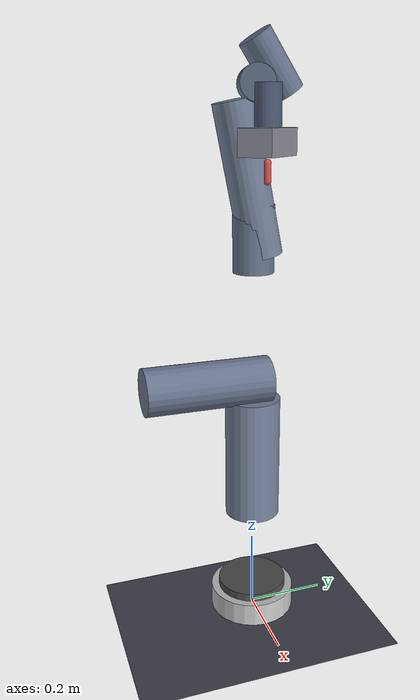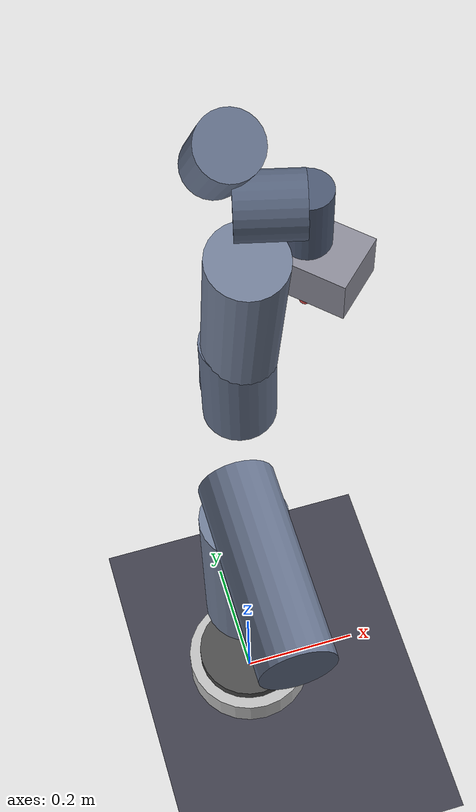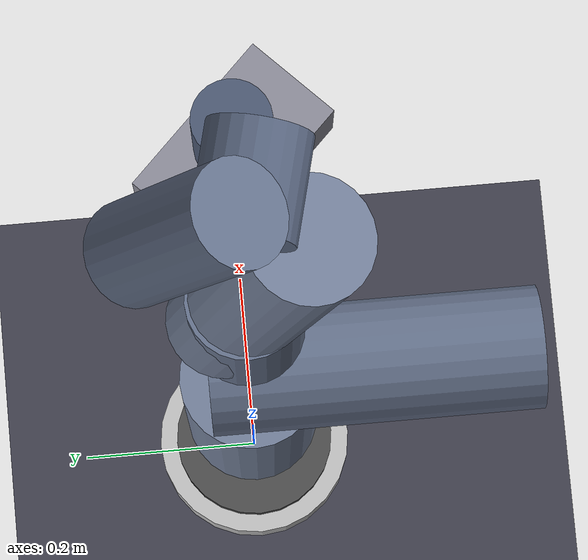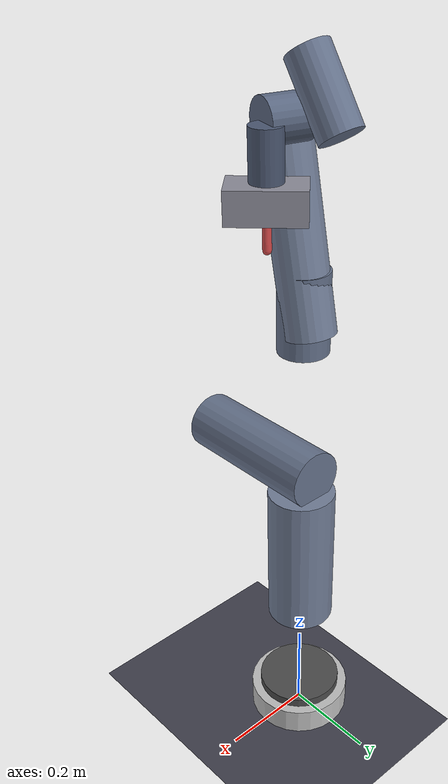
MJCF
<mujoco model="panda">
  <compiler angle="radian" autolimits="true"/>
  <option integrator="implicitfast" timestep="0.005"/>

  <worldbody>
    <light pos="1 1 2" mode="trackcom"/>
    <geom type="plane" size="1.5 1.5 0.05" rgba="0.25 0.25 0.3 1"/>

    <body name="link0" pos="0 0 0">
      <inertial mass="0.629769" pos="-0.041018 -0.00014 0.049974"
        fullinertia="0.00315 0.00388 0.004285 8.2904e-7 0.00015 8.2299e-6"/>
      <geom type="cylinder" size="0.11 0.06" fromto="0 0 0 0 0 0.06" rgba="0.75 0.75 0.75 1"/>
      <geom type="cylinder" size="0.09 0.02" fromto="0 0 0.06 0 0 0.08" rgba="0.3 0.3 0.3 1"/>

      <body name="link1" pos="0 0 0.333">
        <inertial mass="4.970684" pos="0.003875 0.002081 -0.04762"
          fullinertia="0.70337 0.70661 0.0091170 -0.00013900 0.0067720 0.019169"/>
        <joint name="joint1" type="hinge" axis="0 0 1" range="-2.8973 2.8973" armature="0.1" damping="1"/>
        <geom type="cylinder" size="0.07 0.18" fromto="0 0 -0.05 0 0 0.27" rgba="0.45 0.5 0.6 1"/>

        <body name="link2" pos="0 0 0.316" quat="0.7071 -0.7071 0 0">
          <inertial mass="0.646926" pos="-0.003141 -0.02872 0.003495"
            fullinertia="0.0079620 2.8110e-2 2.5995e-2 -3.925e-3 1.0254e-2 7.04e-4"/>
          <joint name="joint2" axis="0 0 1" range="-1.7628 1.7628" armature="0.1" damping="1"/>
          <geom type="cylinder" size="0.06 0.18" fromto="0 0 -0.28 0 0 0.04" rgba="0.4 0.45 0.55 1"/>

          <body name="link3" pos="0 -0.316 0" quat="0.7071 0.7071 0 0">
            <inertial mass="3.228604" pos="2.7518e-2 3.9252e-2 -6.6502e-2"
              fullinertia="3.7242e-2 3.6155e-2 1.083e-2 -4.761e-3 -1.1396e-2 -1.2805e-2"/>
            <joint name="joint3" axis="0 0 1" range="-2.8973 2.8973" armature="0.1" damping="1"/>
            <geom type="cylinder" size="0.05 0.16" fromto="0 0 -0.04 0 0 0.12" rgba="0.4 0.45 0.55 1"/>

            <body name="link4" pos="0.0825 0 0" quat="0.7071 0.7071 0 0">
              <inertial mass="3.587895" pos="-5.317e-2 1.04419e-1 2.7454e-2"
                fullinertia="2.5853e-2 1.9552e-2 2.8323e-2 7.796e-3 -1.332e-3 8.641e-3"/>
              <joint name="joint4" axis="0 0 1" range="-3.0718 -0.0698" armature="0.1" damping="1"/>
              <geom type="cylinder" size="0.05 0.14" fromto="-0.08 0 -0.02 -0.08 0.35 0.05" rgba="0.45 0.5 0.6 1"/>

              <body name="link5" pos="-0.0825 0.384 0" quat="0.7071 -0.7071 0 0">
                <inertial mass="1.225946" pos="-1.1953e-2 4.1065e-2 -3.8437e-2"
                  fullinertia="3.5549e-2 2.9474e-2 8.627e-3 -2.117e-3 -4.037e-3 2.29e-4"/>
                <joint name="joint5" axis="0 0 1" range="-2.8973 2.8973" armature="0.1" damping="1"/>
                <geom type="cylinder" size="0.04 0.12" fromto="0 0.08 -0.02 0 0 0.10" rgba="0.4 0.45 0.55 1"/>

                <body name="link6" pos="0 0 0" quat="0.7071 0.7071 0 0">
                  <inertial mass="1.666555" pos="6.0149e-2 -1.4117e-2 -1.0517e-2"
                    fullinertia="1.964e-3 4.354e-3 5.433e-3 1.09e-4 -1.158e-3 3.41e-4"/>
                  <joint name="joint6" axis="0 0 1" range="-0.0175 3.7525" armature="0.1" damping="1"/>
                  <geom type="cylinder" size="0.04 0.09" fromto="0 0 0 0.08 0 0.02" rgba="0.35 0.4 0.5 1"/>

                  <body name="link7" pos="0.088 0 0" quat="0.7071 0.7071 0 0">
                    <inertial mass="0.735522" pos="1.0517e-2 -4.252e-3 6.1597e-2"
                      fullinertia="1.2516e-2 1.0027e-2 4.815e-3 -4.28e-4 -1.196e-3 -7.41e-4"/>
                    <joint name="joint7" axis="0 0 1" range="-2.8973 2.8973" armature="0.1" damping="1"/>
                    <geom type="cylinder" size="0.03 0.08" fromto="0 0 0 0 0 0.09" rgba="0.3 0.35 0.45 1"/>

                    <body name="hand" pos="0 0 0.107" quat="0.92388 0 0 -0.38268">
                      <inertial mass="0.73" pos="-0.01 0 0.03" diaginertia="0.001 0.0025 0.0017"/>
                      <geom type="box" size="0.04 0.07 0.03" pos="0 0 0.015" rgba="0.55 0.55 0.6 1"/>

                      <body name="left_finger" pos="0 0 0.0584">
                        <inertial mass="0.015" pos="0 0 0" diaginertia="2.375e-6 2.375e-6 7.5e-7"/>
                        <joint name="finger_joint1" type="slide" axis="0 1 0" range="0 0.04" armature="0.1" damping="1"/>
                        <geom type="capsule" size="0.008 0.025" fromto="0 0 0 0 0 0.04" rgba="0.85 0.3 0.3 1"/>
                      </body>

                      <body name="right_finger" pos="0 0 0.0584" quat="0 0 0 1">
                        <inertial mass="0.015" pos="0 0 0" diaginertia="2.375e-6 2.375e-6 7.5e-7"/>
                        <joint name="finger_joint2" type="slide" axis="0 1 0" range="0 0.04" armature="0.1" damping="1"/>
                        <geom type="capsule" size="0.008 0.025" fromto="0 0 0 0 0 0.04" rgba="0.85 0.3 0.3 1"/>
                      </body>
                    </body>
                  </body>
                </body>
              </body>
            </body>
          </body>
        </body>
      </body>
    </body>
  </worldbody>

  <actuator>
    <general name="a1" joint="joint1" dyntype="none" biastype="affine"
      gainprm="100" biasprm="0 -100 -10" ctrlrange="-2.8973 2.8973" forcerange="-87 87"/>
    <general name="a2" joint="joint2" dyntype="none" biastype="affine"
      gainprm="100" biasprm="0 -100 -10" ctrlrange="-1.7628 1.7628" forcerange="-87 87"/>
    <general name="a3" joint="joint3" dyntype="none" biastype="affine"
      gainprm="80" biasprm="0 -80 -8" ctrlrange="-2.8973 2.8973" forcerange="-87 87"/>
    <general name="a4" joint="joint4" dyntype="none" biastype="affine"
      gainprm="80" biasprm="0 -80 -8" ctrlrange="-3.0718 -0.0698" forcerange="-87 87"/>
    <general name="a5" joint="joint5" dyntype="none" biastype="affine"
      gainprm="50" biasprm="0 -50 -5" ctrlrange="-2.8973 2.8973" forcerange="-12 12"/>
    <general name="a6" joint="joint6" dyntype="none" biastype="affine"
      gainprm="50" biasprm="0 -50 -5" ctrlrange="-0.0175 3.7525" forcerange="-12 12"/>
    <general name="a7" joint="joint7" dyntype="none" biastype="affine"
      gainprm="50" biasprm="0 -50 -5" ctrlrange="-2.8973 2.8973" forcerange="-12 12"/>
  </actuator>

  <equality>
    <joint joint1="finger_joint1" joint2="finger_joint2" solimp="0.95 0.99 0.001" solref="0.005 1"/>
  </equality>

  <keyframe>
    <key name="home" qpos="0 0 0 -1.57079 0 1.57079 -0.7853 0.04 0.04"
      ctrl="0 0 0 -1.57079 0 1.57079 -0.7853"/>
  </keyframe>
</mujoco>
